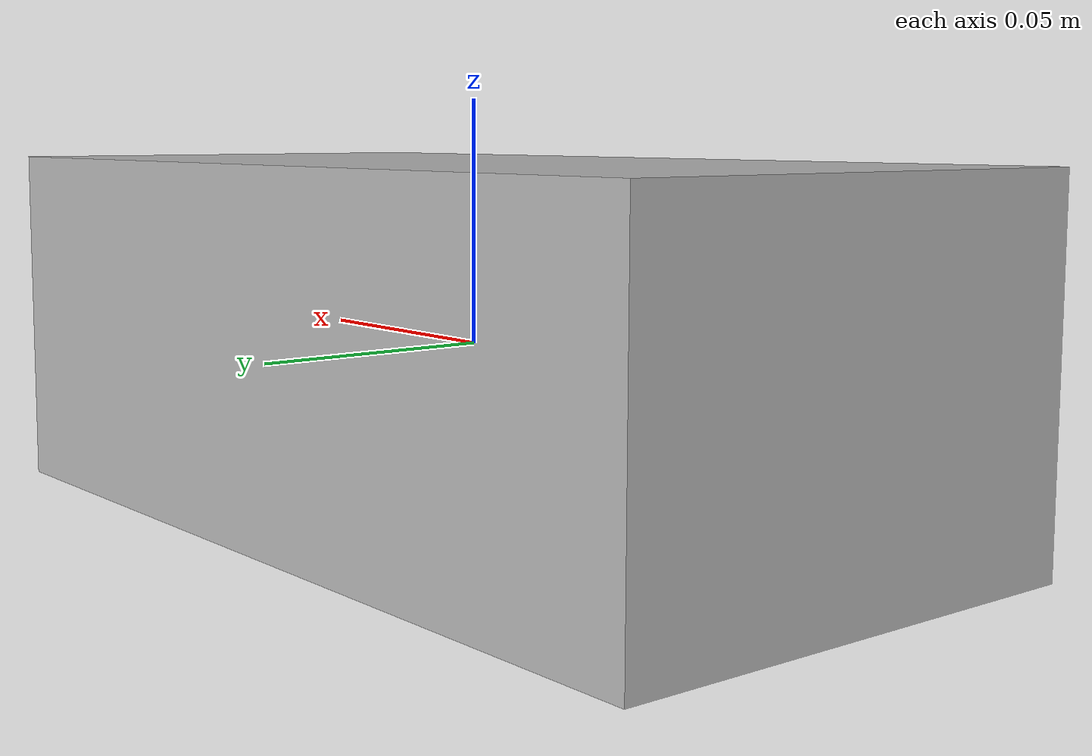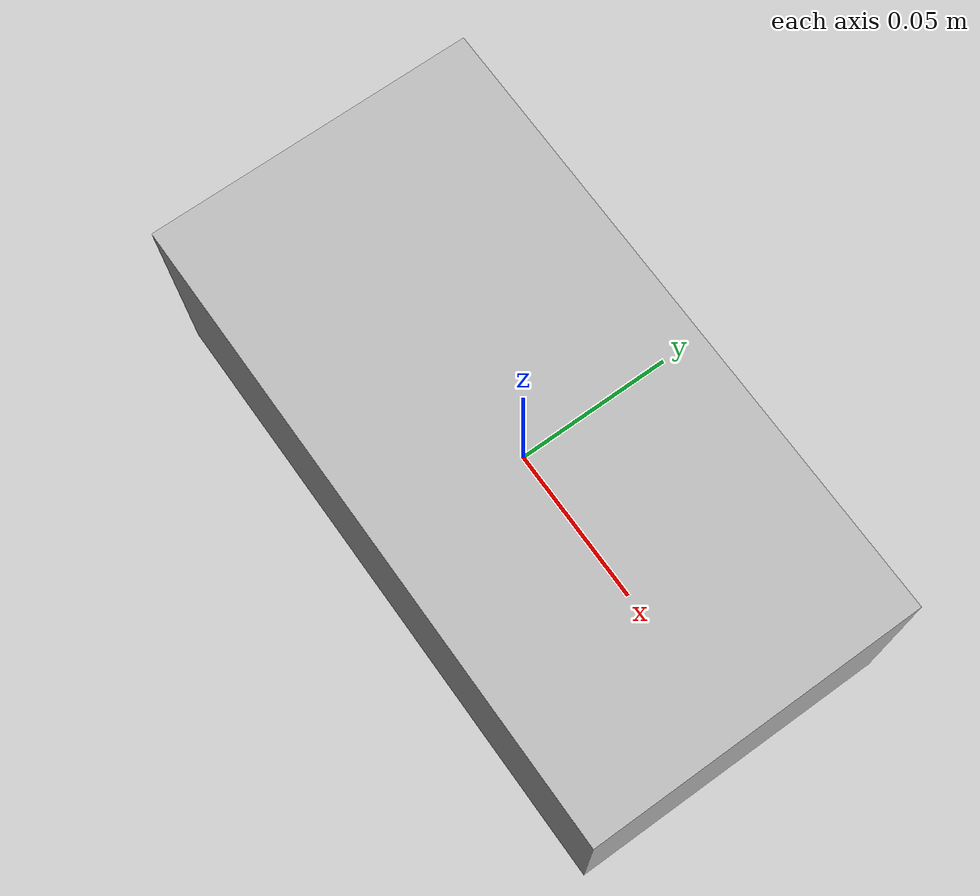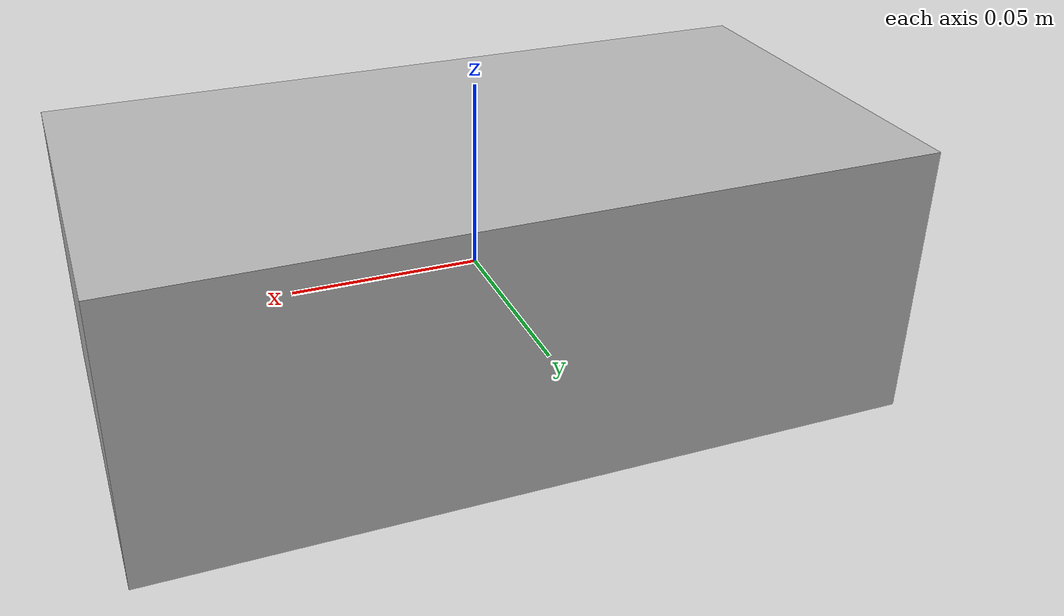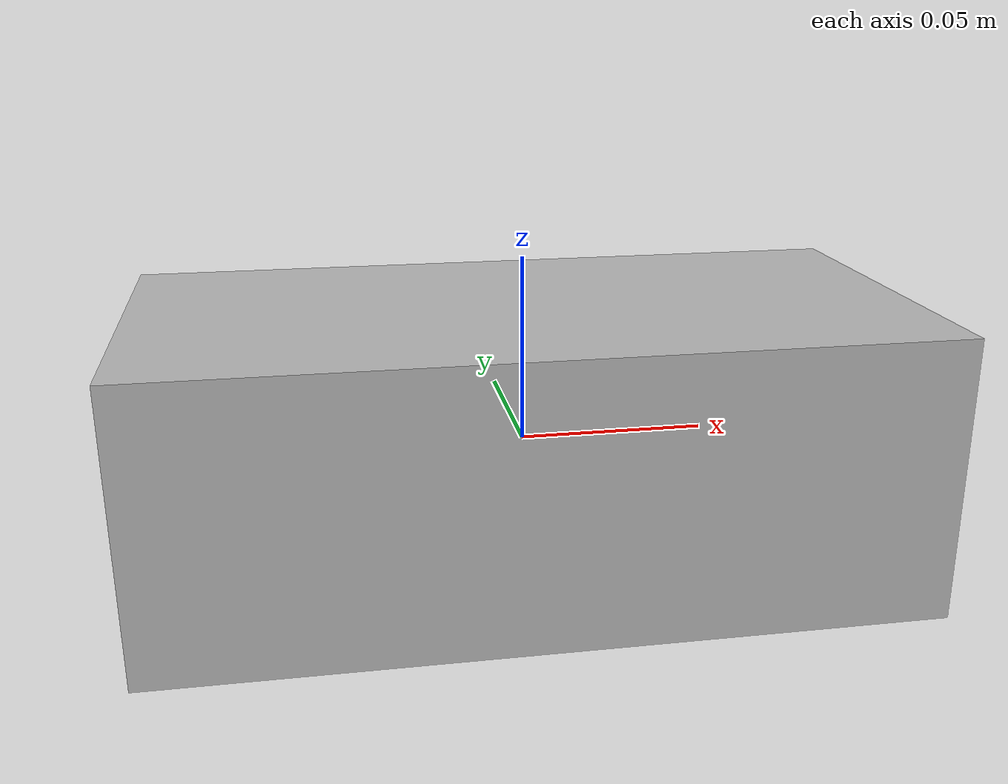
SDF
<?xml version='1.0'?>
<sdf version="1.4">
  <model name="kobuki_dock">
    <static>true</static>
    <link name="dock_link">
      <visual name="dock_visual">
        <geometry>
          <box>
            <size>0.205 0.105 0.075</size>
          </box>
        </geometry>
      </visual>
      <collision name="dock_collision">
        <geometry>
          <box>
            <size>0.205 0.105 0.075</size>
          </box>
        </geometry>
      </collision>
    </link>
  </model>
</sdf>
